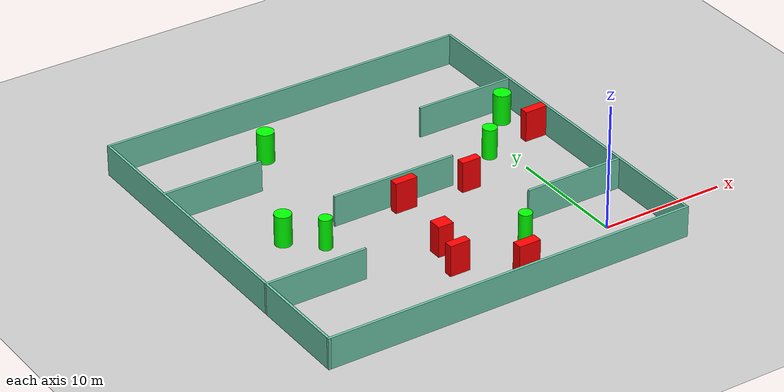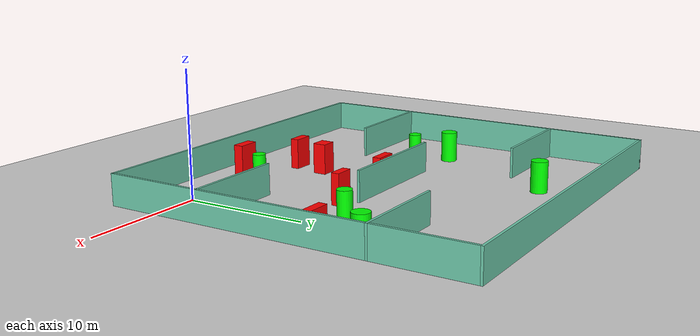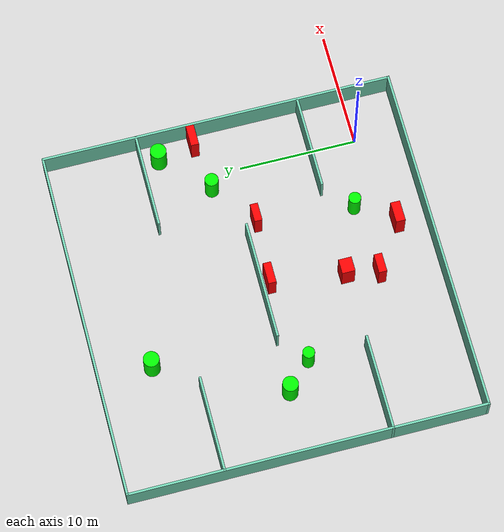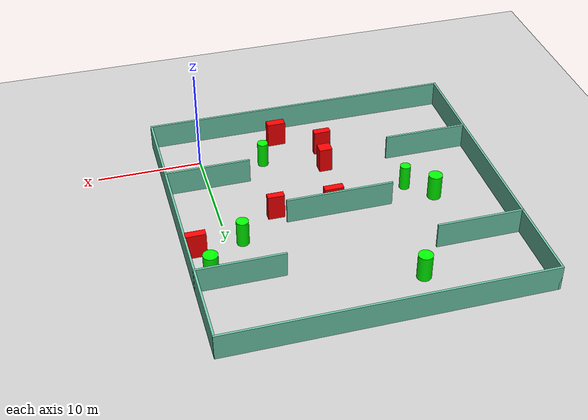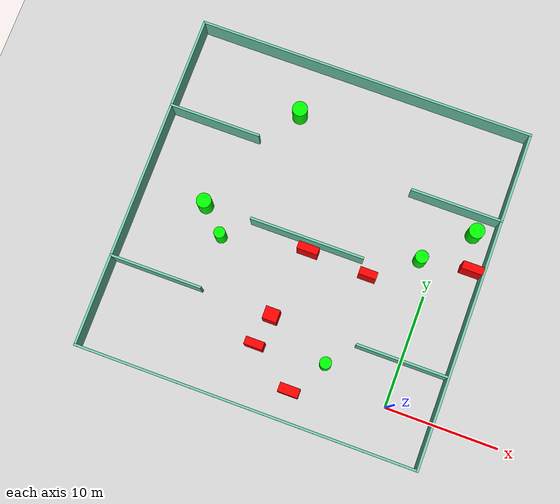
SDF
<sdf version="1.7">
 <world name="default">
  <light name="sun" type="directional">
   <pose>0 0 10 0 -0 0</pose>
   <diffuse>0.8 0.8 0.8 1</diffuse>
   <specular>0.2 0.2 0.2 1</specular>
   <attenuation>
    <range>1000</range>
    <constant>0.9</constant>
    <linear>0.01</linear>
    <quadratic>0.001</quadratic>
   </attenuation>
   <direction>-0.5 0.1 -0.9</direction>
   <spot><inner_angle>0</inner_angle><outer_angle>0</outer_angle><falloff>0</falloff></spot>
  </light>
  <model name="ground_plane">
   <static>1</static>
   <link name="link">
    <collision name="collision">
     <geometry><plane><normal>0 0 1</normal><size>100 100</size></plane></geometry>
     <surface>
      <contact><collide_bitmask>65535</collide_bitmask></contact>
      <friction><ode><mu>100</mu><mu2>50</mu2></ode></friction>
     </surface>
    </collision>
    <visual name="visual">
     <cast_shadows>0</cast_shadows>
     <geometry><plane><normal>0 0 1</normal><size>100 100</size></plane></geometry>
     <material>
      <script><uri>file://media/materials/scripts/gazebo.material</uri><name>Gazebo/Grey</name></script>
     </material>
    </visual>
   </link>
  </model>
  <gravity>0 0 -9.8</gravity>
  <magnetic_field>6e-06 2.3e-05 -4.2e-05</magnetic_field>
  <atmosphere type="adiabatic"/>
  <physics type="ode">
   <max_step_size>0.001</max_step_size>
   <real_time_factor>1</real_time_factor>
   <real_time_update_rate>1000</real_time_update_rate>
  </physics>
  <scene><ambient>0.4 0.4 0.4 1</ambient><background>0.7 0.7 0.7 1</background><shadows>1</shadows></scene>
  <spherical_coordinates>
   <surface_model>EARTH_WGS84</surface_model>
   <latitude_deg>0</latitude_deg>
   <longitude_deg>0</longitude_deg>
   <elevation>0</elevation>
   <heading_deg>0</heading_deg>
  </spherical_coordinates>
  <model name="my_base_walls">
   <link name="Wall_10">
    <collision name="Wall_10_Collision">
     <geometry><box><size>8.2 0.2 2.5</size></box></geometry>
     <pose>0 0 1.25 0 -0 0</pose>
    </collision>
    <visual name="Wall_10_Visual">
     <pose>0 0 1.25 0 -0 0</pose>
     <geometry><box><size>8.2 0.2 2.5</size></box></geometry>
     <material>
      <script><uri>file://media/materials/scripts/gazebo.material</uri><name>Gazebo/Grey</name></script>
      <ambient>0.435294 0.796078 0.67451 1</ambient>
     </material>
     <meta><layer>0</layer></meta>
    </visual>
    <pose>-11 -7 0 0 -0 0</pose>
   </link>
   <link name="Wall_12">
    <collision name="Wall_12_Collision">
     <geometry><box><size>8.2 0.2 2.5</size></box></geometry>
     <pose>0 0 1.25 0 -0 0</pose>
    </collision>
    <visual name="Wall_12_Visual">
     <pose>0 0 1.25 0 -0 0</pose>
     <geometry><box><size>8.2 0.2 2.5</size></box></geometry>
     <material>
      <script><uri>file://media/materials/scripts/gazebo.material</uri><name>Gazebo/Grey</name></script>
      <ambient>0.435294 0.796078 0.67451 1</ambient>
     </material>
     <meta><layer>0</layer></meta>
    </visual>
    <pose>-11 7 0 0 -0 0</pose>
   </link>
   <link name="Wall_14">
    <collision name="Wall_14_Collision">
     <geometry><box><size>8.2 0.2 2.5</size></box></geometry>
     <pose>0 0 1.25 0 -0 0</pose>
    </collision>
    <visual name="Wall_14_Visual">
     <pose>0 0 1.25 0 -0 0</pose>
     <geometry><box><size>8.2 0.2 2.5</size></box></geometry>
     <material>
      <script><uri>file://media/materials/scripts/gazebo.material</uri><name>Gazebo/Grey</name></script>
      <ambient>0.435294 0.796078 0.67451 1</ambient>
     </material>
     <meta><layer>0</layer></meta>
    </visual>
    <pose>11 7 0 0 -0 3.14159</pose>
   </link>
   <link name="Wall_16">
    <collision name="Wall_16_Collision">
     <geometry><box><size>10.2 0.2 2.5</size></box></geometry>
     <pose>0 0 1.25 0 -0 0</pose>
    </collision>
    <visual name="Wall_16_Visual">
     <pose>0 0 1.25 0 -0 0</pose>
     <geometry><box><size>10.2 0.2 2.5</size></box></geometry>
     <material>
      <script><uri>file://media/materials/scripts/gazebo.material</uri><name>Gazebo/Grey</name></script>
      <ambient>0.435294 0.796078 0.67451 1</ambient>
     </material>
     <meta><layer>0</layer></meta>
    </visual>
    <pose>0 0 0 0 -0 3.14159</pose>
   </link>
   <link name="Wall_2">
    <collision name="Wall_2_Collision">
     <geometry><box><size>30.2 0.2 2.5</size></box></geometry>
     <pose>0 0 1.25 0 -0 0</pose>
    </collision>
    <visual name="Wall_2_Visual">
     <pose>0 0 1.25 0 -0 0</pose>
     <geometry><box><size>30.2 0.2 2.5</size></box></geometry>
     <material>
      <script><uri>file://media/materials/scripts/gazebo.material</uri><name>Gazebo/Grey</name></script>
      <ambient>0.435294 0.796078 0.67451 1</ambient>
     </material>
     <meta><layer>0</layer></meta>
    </visual>
    <pose>0 -15 0 0 -0 3.14159</pose>
   </link>
   <link name="Wall_3">
    <collision name="Wall_3_Collision">
     <geometry><box><size>30.2 0.2 2.5</size></box></geometry>
     <pose>0 0 1.25 0 -0 0</pose>
    </collision>
    <visual name="Wall_3_Visual">
     <pose>0 0 1.25 0 -0 0</pose>
     <geometry><box><size>30.2 0.2 2.5</size></box></geometry>
     <material>
      <script><uri>file://media/materials/scripts/gazebo.material</uri><name>Gazebo/Grey</name></script>
      <ambient>0.435294 0.796078 0.67451 1</ambient>
     </material>
     <meta><layer>0</layer></meta>
    </visual>
    <pose>-15 0 0 0 -0 1.5708</pose>
   </link>
   <link name="Wall_4">
    <collision name="Wall_4_Collision">
     <geometry><box><size>30.2 0.2 2.5</size></box></geometry>
     <pose>0 0 1.25 0 -0 0</pose>
    </collision>
    <visual name="Wall_4_Visual">
     <pose>0 0 1.25 0 -0 0</pose>
     <geometry><box><size>30.2 0.2 2.5</size></box></geometry>
     <material>
      <script><uri>file://media/materials/scripts/gazebo.material</uri><name>Gazebo/Grey</name></script>
      <ambient>0.435294 0.796078 0.67451 1</ambient>
     </material>
     <meta><layer>0</layer></meta>
    </visual>
    <pose>0 15 0 0 -0 0</pose>
   </link>
   <link name="Wall_6">
    <collision name="Wall_6_Collision">
     <geometry><box><size>30.2 0.2 2.5</size></box></geometry>
     <pose>0 0 1.25 0 -0 0</pose>
    </collision>
    <visual name="Wall_6_Visual">
     <pose>0 0 1.25 0 -0 0</pose>
     <geometry><box><size>30.2 0.2 2.5</size></box></geometry>
     <material>
      <script><uri>file://media/materials/scripts/gazebo.material</uri><name>Gazebo/Grey</name></script>
      <ambient>0.435294 0.796078 0.67451 1</ambient>
     </material>
     <meta><layer>0</layer></meta>
    </visual>
    <pose>15 0 0 0 -0 1.5708</pose>
   </link>
   <link name="Wall_8">
    <collision name="Wall_8_Collision">
     <geometry><box><size>8.2 0.2 2.5</size></box></geometry>
     <pose>0 0 1.25 0 -0 0</pose>
    </collision>
    <visual name="Wall_8_Visual">
     <pose>0 0 1.25 0 -0 0</pose>
     <geometry><box><size>8.2 0.2 2.5</size></box></geometry>
     <material>
      <script><uri>file://media/materials/scripts/gazebo.material</uri><name>Gazebo/Grey</name></script>
      <ambient>0.435294 0.796078 0.67451 1</ambient>
     </material>
     <meta><layer>0</layer></meta>
    </visual>
    <pose>11 -7 0 0 -0 3.14159</pose>
   </link>
   <static>1</static>
   <pose>-11 11 0 0 -0 0</pose>
  </model>
  <model name="cylinder1">
   <static>1</static>
   <link name="link">
    <inertial>
     <mass>1</mass>
     <inertia><ixx>0.5</ixx><ixy>0</ixy><ixz>0</ixz><iyy>0.5</iyy><iyz>0</iyz><izz>1</izz></inertia>
    </inertial>
    <collision name="collision">
     <geometry><cylinder><radius>0.5061699633484379</radius><length>2.5</length></cylinder></geometry>
    </collision>
    <visual name="visual">
     <geometry><cylinder><radius>0.5061699633484379</radius><length>2.5</length></cylinder></geometry>
     <material>
      <ambient>0 1 0 1</ambient>
      <diffuse>0 1 0 1</diffuse>
      <specular>0.1 0.1 0.1 1</specular>
      <emissive>0 0 0 0</emissive>
     </material>
    </visual>
   </link>
   <pose>-18.10870817714034 8.927033531800285 1.25 0 0 0</pose>
  </model>
  <model name="cylinder2">
   <static>1</static>
   <link name="link">
    <inertial>
     <mass>1</mass>
     <inertia><ixx>0.5</ixx><ixy>0</ixy><ixz>0</ixz><iyy>0.5</iyy><iyz>0</iyz><izz>1</izz></inertia>
    </inertial>
    <collision name="collision">
     <geometry><cylinder><radius>0.5777450805533053</radius><length>2.5</length></cylinder></geometry>
    </collision>
    <visual name="visual">
     <geometry><cylinder><radius>0.5777450805533053</radius><length>2.5</length></cylinder></geometry>
     <material>
      <ambient>0 1 0 1</ambient>
      <diffuse>0 1 0 1</diffuse>
      <specular>0.1 0.1 0.1 1</specular>
      <emissive>0 0 0 0</emissive>
     </material>
    </visual>
   </link>
   <pose>-1.3552377573367345 12.808036246627035 1.25 0 0 0</pose>
  </model>
  <model name="cylinder3">
   <static>1</static>
   <link name="link">
    <inertial>
     <mass>1</mass>
     <inertia><ixx>0.5</ixx><ixy>0</ixy><ixz>0</ixz><iyy>0.5</iyy><iyz>0</iyz><izz>1</izz></inertia>
    </inertial>
    <collision name="collision">
     <geometry><cylinder><radius>0.6594515297968363</radius><length>2.5</length></cylinder></geometry>
    </collision>
    <visual name="visual">
     <geometry><cylinder><radius>0.6594515297968363</radius><length>2.5</length></cylinder></geometry>
     <material>
      <ambient>0 1 0 1</ambient>
      <diffuse>0 1 0 1</diffuse>
      <specular>0.1 0.1 0.1 1</specular>
      <emissive>0 0 0 0</emissive>
     </material>
    </visual>
   </link>
   <pose>-20.33652940623287 11.048870000436684 1.25 0 0 0</pose>
  </model>
  <model name="cylinder4">
   <static>1</static>
   <link name="link">
    <inertial>
     <mass>1</mass>
     <inertia><ixx>0.5</ixx><ixy>0</ixy><ixz>0</ixz><iyy>0.5</iyy><iyz>0</iyz><izz>1</izz></inertia>
    </inertial>
    <collision name="collision">
     <geometry><cylinder><radius>0.5185796032472244</radius><length>2.5</length></cylinder></geometry>
    </collision>
    <visual name="visual">
     <geometry><cylinder><radius>0.5185796032472244</radius><length>2.5</length></cylinder></geometry>
     <material>
      <ambient>0 1 0 1</ambient>
      <diffuse>0 1 0 1</diffuse>
      <specular>0.1 0.1 0.1 1</specular>
      <emissive>0 0 0 0</emissive>
     </material>
    </visual>
   </link>
   <pose>-5.96313350308853 1.6764991875267583 1.25 0 0 0</pose>
  </model>
  <model name="cylinder5">
   <static>1</static>
   <link name="link">
    <inertial>
     <mass>1</mass>
     <inertia><ixx>0.5</ixx><ixy>0</ixy><ixz>0</ixz><iyy>0.5</iyy><iyz>0</iyz><izz>1</izz></inertia>
    </inertial>
    <collision name="collision">
     <geometry><cylinder><radius>0.6738704735245169</radius><length>2.5</length></cylinder></geometry>
    </collision>
    <visual name="visual">
     <geometry><cylinder><radius>0.6738704735245169</radius><length>2.5</length></cylinder></geometry>
     <material>
      <ambient>0 1 0 1</ambient>
      <diffuse>0 1 0 1</diffuse>
      <specular>0.1 0.1 0.1 1</specular>
      <emissive>0 0 0 0</emissive>
     </material>
    </visual>
   </link>
   <pose>-15.439080903680548 21.44151711374738 1.25 0 0 0</pose>
  </model>
  <model name="cylinder6">
   <static>1</static>
   <link name="link">
    <inertial>
     <mass>1</mass>
     <inertia><ixx>0.5</ixx><ixy>0</ixy><ixz>0</ixz><iyy>0.5</iyy><iyz>0</iyz><izz>1</izz></inertia>
    </inertial>
    <collision name="collision">
     <geometry><cylinder><radius>0.683585716567679</radius><length>2.5</length></cylinder></geometry>
    </collision>
    <visual name="visual">
     <geometry><cylinder><radius>0.683585716567679</radius><length>2.5</length></cylinder></geometry>
     <material>
      <ambient>0 1 0 1</ambient>
      <diffuse>0 1 0 1</diffuse>
      <specular>0.1 0.1 0.1 1</specular>
      <emissive>0 0 0 0</emissive>
     </material>
    </visual>
   </link>
   <pose>2.294918957620368 16.49601039671367 1.25 0 0 0</pose>
  </model>
  <model name="box1">
   <static>1</static>
   <link name="link">
    <inertial>
     <mass>1</mass>
     <inertia><ixx>0.083</ixx><ixy>0</ixy><ixz>0</ixz><iyy>0.083</iyy><iyz>0</iyz><izz>0.083</izz></inertia>
    </inertial>
    <collision name="collision">
     <geometry><box><size>1.7730190108972046 0.8045493421236602 2.5</size></box></geometry>
    </collision>
    <visual name="visual">
     <geometry><box><size>1.7730190108972046 0.8045493421236602 2.5</size></box></geometry>
     <material>
      <ambient>1 0 0 1</ambient>
      <diffuse>1 0 0 1</diffuse>
      <specular>0.1 0.1 0.1 1</specular>
      <emissive>0 0 0 0</emissive>
     </material>
    </visual>
    <sensor name="my_contact" type="contact">
     <contact><collision>box_collision</collision><topic>__default_topic__</topic></contact>
    </sensor>
   </link>
   <pose>-8.047950371419814 -1.4537710547768161 1.25 0 0 0</pose>
  </model>
  <model name="box2">
   <static>1</static>
   <link name="link">
    <inertial>
     <mass>1</mass>
     <inertia><ixx>0.083</ixx><ixy>0</ixy><ixz>0</ixz><iyy>0.083</iyy><iyz>0</iyz><izz>0.083</izz></inertia>
    </inertial>
    <collision name="collision">
     <geometry><box><size>1.8595857166172658 0.6910623220487849 2.5</size></box></geometry>
    </collision>
    <visual name="visual">
     <geometry><box><size>1.8595857166172658 0.6910623220487849 2.5</size></box></geometry>
     <material>
      <ambient>1 0 0 1</ambient>
      <diffuse>1 0 0 1</diffuse>
      <specular>0.1 0.1 0.1 1</specular>
      <emissive>0 0 0 0</emissive>
     </material>
    </visual>
    <sensor name="my_contact" type="contact">
     <contact><collision>box_collision</collision><topic>__default_topic__</topic></contact>
    </sensor>
   </link>
   <pose>3.0015986129824483 13.371346508663507 1.25 0 0 0</pose>
  </model>
  <model name="box3">
   <static>1</static>
   <link name="link">
    <inertial>
     <mass>1</mass>
     <inertia><ixx>0.083</ixx><ixy>0</ixy><ixz>0</ixz><iyy>0.083</iyy><iyz>0</iyz><izz>0.083</izz></inertia>
    </inertial>
    <collision name="collision">
     <geometry><box><size>1.5709962194061295 0.6592294462385526 2.5</size></box></geometry>
    </collision>
    <visual name="visual">
     <geometry><box><size>1.5709962194061295 0.6592294462385526 2.5</size></box></geometry>
     <material>
      <ambient>1 0 0 1</ambient>
      <diffuse>1 0 0 1</diffuse>
      <specular>0.1 0.1 0.1 1</specular>
      <emissive>0 0 0 0</emissive>
     </material>
    </visual>
    <sensor name="my_contact" type="contact">
     <contact><collision>box_collision</collision><topic>__default_topic__</topic></contact>
    </sensor>
   </link>
   <pose>-5.136559362316024 9.952808541840295 1.25 0 0 0</pose>
  </model>
  <model name="box4">
   <static>1</static>
   <link name="link">
    <inertial>
     <mass>1</mass>
     <inertia><ixx>0.083</ixx><ixy>0</ixy><ixz>0</ixz><iyy>0.083</iyy><iyz>0</iyz><izz>0.083</izz></inertia>
    </inertial>
    <collision name="collision">
     <geometry><box><size>1.641225425231741 0.6863000445372809 2.5</size></box></geometry>
    </collision>
    <visual name="visual">
     <geometry><box><size>1.641225425231741 0.6863000445372809 2.5</size></box></geometry>
     <material>
      <ambient>1 0 0 1</ambient>
      <diffuse>1 0 0 1</diffuse>
      <specular>0.1 0.1 0.1 1</specular>
      <emissive>0 0 0 0</emissive>
     </material>
    </visual>
    <sensor name="my_contact" type="contact">
     <contact><collision>box_collision</collision><topic>__default_topic__</topic></contact>
    </sensor>
   </link>
   <pose>-12.08392119642884 1.1897472321657245 1.25 0 0 0</pose>
  </model>
  <model name="box5">
   <static>1</static>
   <link name="link">
    <inertial>
     <mass>1</mass>
     <inertia><ixx>0.083</ixx><ixy>0</ixy><ixz>0</ixz><iyy>0.083</iyy><iyz>0</iyz><izz>0.083</izz></inertia>
    </inertial>
    <collision name="collision">
     <geometry><box><size>1.8366991767542842 0.6727780004250163 2.5</size></box></geometry>
    </collision>
    <visual name="visual">
     <geometry><box><size>1.8366991767542842 0.6727780004250163 2.5</size></box></geometry>
     <material>
      <ambient>1 0 0 1</ambient>
      <diffuse>1 0 0 1</diffuse>
      <specular>0.1 0.1 0.1 1</specular>
      <emissive>0 0 0 0</emissive>
     </material>
    </visual>
    <sensor name="my_contact" type="contact">
     <contact><collision>box_collision</collision><topic>__default_topic__</topic></contact>
    </sensor>
   </link>
   <pose>-10.611998994805552 10.235669715686553 1.25 0 0 0</pose>
  </model>
  <model name="box6">
   <static>1</static>
   <link name="link">
    <inertial>
     <mass>1</mass>
     <inertia><ixx>0.083</ixx><ixy>0</ixy><ixz>0</ixz><iyy>0.083</iyy><iyz>0</iyz><izz>0.083</izz></inertia>
    </inertial>
    <collision name="collision">
     <geometry><box><size>1.2553438002396562 1.1091991066555082 2.5</size></box></geometry>
    </collision>
    <visual name="visual">
     <geometry><box><size>1.2553438002396562 1.1091991066555082 2.5</size></box></geometry>
     <material>
      <ambient>1 0 0 1</ambient>
      <diffuse>1 0 0 1</diffuse>
      <specular>0.1 0.1 0.1 1</specular>
      <emissive>0 0 0 0</emissive>
     </material>
    </visual>
    <sensor name="my_contact" type="contact">
     <contact><collision>box_collision</collision><topic>__default_topic__</topic></contact>
    </sensor>
   </link>
   <pose>-11.587704903453137 3.9207498287826805 1.25 0 0 0</pose>
  </model>
 </world>
</sdf>
